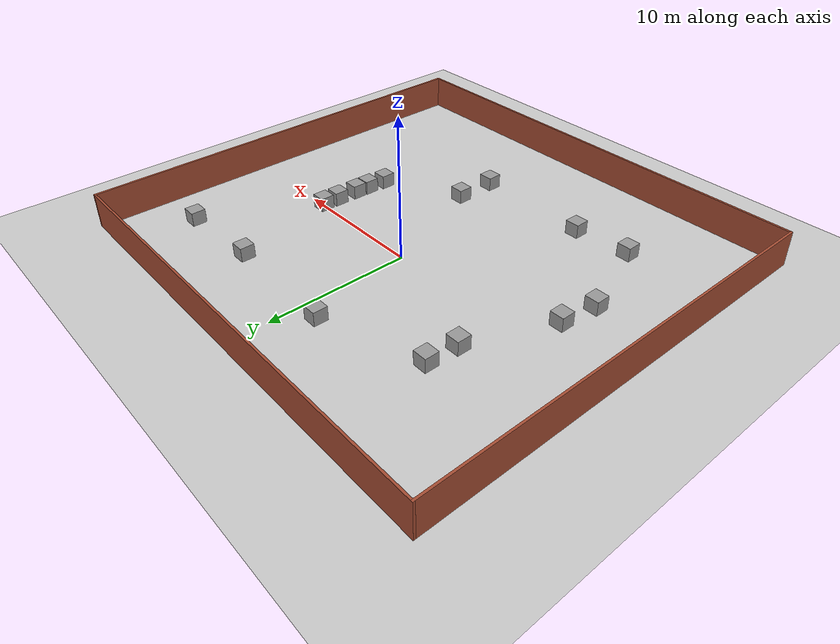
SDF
<sdf version="1.7">
 <world name="default">
  <light name="sun" type="directional">
   <pose>0 0 10 0 -0 0</pose>
   <diffuse>0.8 0.8 0.8 1</diffuse>
   <specular>0.2 0.2 0.2 1</specular>
   <attenuation>
    <range>1000</range>
    <constant>0.9</constant>
    <linear>0.01</linear>
    <quadratic>0.001</quadratic>
   </attenuation>
   <direction>-0.5 0.1 -0.9</direction>
   <spot><inner_angle>0</inner_angle><outer_angle>0</outer_angle><falloff>0</falloff></spot>
  </light>
  <model name="ground_plane">
   <static>1</static>
   <link name="link">
    <collision name="collision">
     <geometry><plane><normal>0 0 1</normal><size>100 100</size></plane></geometry>
     <surface><friction><ode><mu>100</mu><mu2>50</mu2></ode></friction></surface>
    </collision>
    <visual name="visual">
     <cast_shadows>0</cast_shadows>
     <geometry><plane><normal>0 0 1</normal><size>100 100</size></plane></geometry>
     <material>
      <script><uri>file://media/materials/scripts/gazebo.material</uri><name>Gazebo/Grey</name></script>
     </material>
    </visual>
   </link>
  </model>
  <gravity>0 0 -9.8</gravity>
  <magnetic_field>6e-06 2.3e-05 -4.2e-05</magnetic_field>
  <atmosphere type="adiabatic"/>
  <physics type="ode">
   <max_step_size>0.001</max_step_size>
   <real_time_factor>1</real_time_factor>
   <real_time_update_rate>1000</real_time_update_rate>
  </physics>
  <scene><ambient>0.4 0.4 0.4 1</ambient><background>0.7 0.7 0.7 1</background><shadows>1</shadows></scene>
  <audio><device>default</device></audio>
  <spherical_coordinates>
   <surface_model>EARTH_WGS84</surface_model>
   <latitude_deg>0</latitude_deg>
   <longitude_deg>0</longitude_deg>
   <elevation>0</elevation>
   <heading_deg>0</heading_deg>
  </spherical_coordinates>
  <model name="Untitled">
   <pose>-0.039058 -2.41938 0 0 -0 0</pose>
   <link name="Wall_11">
    <collision name="Wall_11_Collision">
     <geometry><box><size>31 0.15 2.5</size></box></geometry>
     <pose>0 0 1.25 0 -0 0</pose>
    </collision>
    <visual name="Wall_11_Visual">
     <pose>0 0 1.25 0 -0 0</pose>
     <geometry><box><size>31 0.15 2.5</size></box></geometry>
     <material>
      <script><uri>file://media/materials/scripts/gazebo.material</uri><name>Gazebo/Bricks</name></script>
      <ambient>1 1 1 1</ambient>
     </material>
     <meta><layer>0</layer></meta>
    </visual>
    <pose>-16.55 -0 0 0 -0 -1.5708</pose>
   </link>
   <link name="Wall_12">
    <collision name="Wall_12_Collision">
     <geometry><box><size>33.25 0.15 2.5</size></box></geometry>
     <pose>0 0 1.25 0 -0 0</pose>
    </collision>
    <visual name="Wall_12_Visual">
     <pose>0 0 1.25 0 -0 0</pose>
     <geometry><box><size>33.25 0.15 2.5</size></box></geometry>
     <material>
      <script><uri>file://media/materials/scripts/gazebo.material</uri><name>Gazebo/Bricks</name></script>
      <ambient>1 1 1 1</ambient>
     </material>
     <meta><layer>0</layer></meta>
    </visual>
    <pose>0 -15.425 0 0 -0 0</pose>
   </link>
   <link name="Wall_13">
    <collision name="Wall_13_Collision">
     <geometry><box><size>31 0.15 2.5</size></box></geometry>
     <pose>0 0 1.25 0 -0 0</pose>
    </collision>
    <visual name="Wall_13_Visual">
     <pose>0 0 1.25 0 -0 0</pose>
     <geometry><box><size>31 0.15 2.5</size></box></geometry>
     <material>
      <script><uri>file://media/materials/scripts/gazebo.material</uri><name>Gazebo/Bricks</name></script>
      <ambient>1 1 1 1</ambient>
     </material>
     <meta><layer>0</layer></meta>
    </visual>
    <pose>16.55 -0 0 0 -0 1.5708</pose>
   </link>
   <link name="Wall_14">
    <collision name="Wall_14_Collision">
     <geometry><box><size>33.25 0.15 2.5</size></box></geometry>
     <pose>0 0 1.25 0 -0 0</pose>
    </collision>
    <visual name="Wall_14_Visual">
     <pose>0 0 1.25 0 -0 0</pose>
     <geometry><box><size>33.25 0.15 2.5</size></box></geometry>
     <material>
      <script><uri>file://media/materials/scripts/gazebo.material</uri><name>Gazebo/Bricks</name></script>
      <ambient>1 1 1 1</ambient>
     </material>
     <meta><layer>0</layer></meta>
    </visual>
    <pose>0 15.425 0 0 -0 3.14159</pose>
   </link>
   <static>1</static>
  </model>
  <model name="unit_box">
   <pose>-9.43213 -11.178 0.5 0 -0 0</pose>
   <link name="link">
    <inertial>
     <mass>1</mass>
     <inertia>
      <ixx>0.166667</ixx>
      <ixy>0</ixy>
      <ixz>0</ixz>
      <iyy>0.166667</iyy>
      <iyz>0</iyz>
      <izz>0.166667</izz>
     </inertia>
    </inertial>
    <collision name="collision"><geometry><box><size>1 1 1</size></box></geometry></collision>
    <visual name="visual">
     <geometry><box><size>1 1 1</size></box></geometry>
     <material>
      <script><name>Gazebo/Grey</name><uri>file://media/materials/scripts/gazebo.material</uri></script>
     </material>
    </visual>
   </link>
  </model>
  <model name="unit_box_0">
   <pose>-5.44391 -10.7888 0.5 0 -0 0</pose>
   <link name="link">
    <inertial>
     <mass>1</mass>
     <inertia>
      <ixx>0.166667</ixx>
      <ixy>0</ixy>
      <ixz>0</ixz>
      <iyy>0.166667</iyy>
      <iyz>0</iyz>
      <izz>0.166667</izz>
     </inertia>
    </inertial>
    <collision name="collision"><geometry><box><size>1 1 1</size></box></geometry></collision>
    <visual name="visual">
     <geometry><box><size>1 1 1</size></box></geometry>
     <material>
      <script><name>Gazebo/Grey</name><uri>file://media/materials/scripts/gazebo.material</uri></script>
     </material>
    </visual>
   </link>
  </model>
  <model name="unit_box_1">
   <pose>-11.6268 -5.27934 0.5 0 -0 0</pose>
   <link name="link">
    <inertial>
     <mass>1</mass>
     <inertia>
      <ixx>0.166667</ixx>
      <ixy>0</ixy>
      <ixz>0</ixz>
      <iyy>0.166667</iyy>
      <iyz>0</iyz>
      <izz>0.166667</izz>
     </inertia>
    </inertial>
    <collision name="collision"><geometry><box><size>1 1 1</size></box></geometry></collision>
    <visual name="visual">
     <geometry><box><size>1 1 1</size></box></geometry>
     <material>
      <script><name>Gazebo/Grey</name><uri>file://media/materials/scripts/gazebo.material</uri></script>
     </material>
    </visual>
   </link>
  </model>
  <model name="unit_box_2">
   <pose>-8.83479 3.20127 0.5 0 -0 0</pose>
   <link name="link">
    <inertial>
     <mass>1</mass>
     <inertia>
      <ixx>0.166667</ixx>
      <ixy>0</ixy>
      <ixz>0</ixz>
      <iyy>0.166667</iyy>
      <iyz>0</iyz>
      <izz>0.166667</izz>
     </inertia>
    </inertial>
    <collision name="collision"><geometry><box><size>1 1 1</size></box></geometry></collision>
    <visual name="visual">
     <geometry><box><size>1 1 1</size></box></geometry>
     <material>
      <script><name>Gazebo/Grey</name><uri>file://media/materials/scripts/gazebo.material</uri></script>
     </material>
    </visual>
   </link>
  </model>
  <model name="unit_box_3">
   <pose>6.87912 7.51722 0.5 0 -0 0</pose>
   <link name="link">
    <inertial>
     <mass>1</mass>
     <inertia>
      <ixx>0.166667</ixx>
      <ixy>0</ixy>
      <ixz>0</ixz>
      <iyy>0.166667</iyy>
      <iyz>0</iyz>
      <izz>0.166667</izz>
     </inertia>
    </inertial>
    <collision name="collision"><geometry><box><size>1 1 1</size></box></geometry></collision>
    <visual name="visual">
     <geometry><box><size>1 1 1</size></box></geometry>
     <material>
      <script><name>Gazebo/Grey</name><uri>file://media/materials/scripts/gazebo.material</uri></script>
     </material>
    </visual>
   </link>
  </model>
  <model name="unit_box_4">
   <pose>3.0137 -8.04814 0.5 0 -0 0</pose>
   <link name="link">
    <inertial>
     <mass>1</mass>
     <inertia>
      <ixx>0.166667</ixx>
      <ixy>0</ixy>
      <ixz>0</ixz>
      <iyy>0.166667</iyy>
      <iyz>0</iyz>
      <izz>0.166667</izz>
     </inertia>
    </inertial>
    <collision name="collision"><geometry><box><size>1 1 1</size></box></geometry></collision>
    <visual name="visual">
     <geometry><box><size>1 1 1</size></box></geometry>
     <material>
      <script><name>Gazebo/Grey</name><uri>file://media/materials/scripts/gazebo.material</uri></script>
     </material>
    </visual>
   </link>
  </model>
  <model name="unit_box_5">
   <pose>8.55545 -1.14035 0.5 0 -0 0</pose>
   <link name="link">
    <inertial>
     <mass>1</mass>
     <inertia>
      <ixx>0.166667</ixx>
      <ixy>0</ixy>
      <ixz>0</ixz>
      <iyy>0.166667</iyy>
      <iyz>0</iyz>
      <izz>0.166667</izz>
     </inertia>
    </inertial>
    <collision name="collision"><geometry><box><size>1 1 1</size></box></geometry></collision>
    <visual name="visual">
     <geometry><box><size>1 1 1</size></box></geometry>
     <material>
      <script><name>Gazebo/Grey</name><uri>file://media/materials/scripts/gazebo.material</uri></script>
     </material>
    </visual>
   </link>
  </model>
  <model name="unit_box_6">
   <pose>-1.54313 7.69859 0.5 0 -0 0</pose>
   <link name="link">
    <inertial>
     <mass>1</mass>
     <inertia>
      <ixx>0.166667</ixx>
      <ixy>0</ixy>
      <ixz>0</ixz>
      <iyy>0.166667</iyy>
      <iyz>0</iyz>
      <izz>0.166667</izz>
     </inertia>
    </inertial>
    <collision name="collision"><geometry><box><size>1 1 1</size></box></geometry></collision>
    <visual name="visual">
     <geometry><box><size>1 1 1</size></box></geometry>
     <material>
      <script><name>Gazebo/Grey</name><uri>file://media/materials/scripts/gazebo.material</uri></script>
     </material>
    </visual>
   </link>
  </model>
  <model name="unit_box_7">
   <pose>12.8305 7.83272 0.5 0 -0 0</pose>
   <link name="link">
    <inertial>
     <mass>1</mass>
     <inertia>
      <ixx>0.166667</ixx>
      <ixy>0</ixy>
      <ixz>0</ixz>
      <iyy>0.166667</iyy>
      <iyz>0</iyz>
      <izz>0.166667</izz>
     </inertia>
    </inertial>
    <collision name="collision"><geometry><box><size>1 1 1</size></box></geometry></collision>
    <visual name="visual">
     <geometry><box><size>1 1 1</size></box></geometry>
     <material>
      <script><name>Gazebo/Grey</name><uri>file://media/materials/scripts/gazebo.material</uri></script>
     </material>
    </visual>
   </link>
  </model>
  <model name="unit_box_8">
   <pose>2.94751 -10.9046 0.5 0 -0 0</pose>
   <link name="link">
    <inertial>
     <mass>1</mass>
     <inertia>
      <ixx>0.166667</ixx>
      <ixy>0</ixy>
      <ixz>0</ixz>
      <iyy>0.166667</iyy>
      <iyz>0</iyz>
      <izz>0.166667</izz>
     </inertia>
    </inertial>
    <collision name="collision"><geometry><box><size>1 1 1</size></box></geometry></collision>
    <visual name="visual">
     <geometry><box><size>1 1 1</size></box></geometry>
     <material>
      <script><name>Gazebo/Grey</name><uri>file://media/materials/scripts/gazebo.material</uri></script>
     </material>
    </visual>
   </link>
  </model>
  <model name="unit_box_9">
   <pose>-8.69195 5.43701 0.5 0 -0 0</pose>
   <link name="link">
    <inertial>
     <mass>1</mass>
     <inertia>
      <ixx>0.166667</ixx>
      <ixy>0</ixy>
      <ixz>0</ixz>
      <iyy>0.166667</iyy>
      <iyz>0</iyz>
      <izz>0.166667</izz>
     </inertia>
    </inertial>
    <collision name="collision"><geometry><box><size>1 1 1</size></box></geometry></collision>
    <visual name="visual">
     <geometry><box><size>1 1 1</size></box></geometry>
     <material>
      <script><name>Gazebo/Grey</name><uri>file://media/materials/scripts/gazebo.material</uri></script>
     </material>
    </visual>
   </link>
  </model>
  <model name="unit_box_10">
   <pose>-11.2576 -2.63963 0.5 0 -0 0</pose>
   <link name="link">
    <inertial>
     <mass>1</mass>
     <inertia>
      <ixx>0.166667</ixx>
      <ixy>0</ixy>
      <ixz>0</ixz>
      <iyy>0.166667</iyy>
      <iyz>0</iyz>
      <izz>0.166667</izz>
     </inertia>
    </inertial>
    <collision name="collision"><geometry><box><size>1 1 1</size></box></geometry></collision>
    <visual name="visual">
     <geometry><box><size>1 1 1</size></box></geometry>
     <material>
      <script><name>Gazebo/Grey</name><uri>file://media/materials/scripts/gazebo.material</uri></script>
     </material>
    </visual>
   </link>
  </model>
  <model name="unit_box_11">
   <pose>8.49325 -2.70008 0.5 0 -0 0</pose>
   <link name="link">
    <inertial>
     <mass>1</mass>
     <inertia>
      <ixx>0.166667</ixx>
      <ixy>0</ixy>
      <ixz>0</ixz>
      <iyy>0.166667</iyy>
      <iyz>0</iyz>
      <izz>0.166667</izz>
     </inertia>
    </inertial>
    <collision name="collision"><geometry><box><size>1 1 1</size></box></geometry></collision>
    <visual name="visual">
     <geometry><box><size>1 1 1</size></box></geometry>
     <material>
      <script><name>Gazebo/Grey</name><uri>file://media/materials/scripts/gazebo.material</uri></script>
     </material>
    </visual>
   </link>
  </model>
  <model name="unit_box_12">
   <pose>8.45512 -3.76801 0.5 0 -0 0</pose>
   <link name="link">
    <inertial>
     <mass>1</mass>
     <inertia>
      <ixx>0.166667</ixx>
      <ixy>0</ixy>
      <ixz>0</ixz>
      <iyy>0.166667</iyy>
      <iyz>0</iyz>
      <izz>0.166667</izz>
     </inertia>
    </inertial>
    <collision name="collision"><geometry><box><size>1 1 1</size></box></geometry></collision>
    <visual name="visual">
     <geometry><box><size>1 1 1</size></box></geometry>
     <material>
      <script><name>Gazebo/Grey</name><uri>file://media/materials/scripts/gazebo.material</uri></script>
     </material>
    </visual>
   </link>
  </model>
  <model name="unit_box_13">
   <pose>8.59584 0.06789 0.5 0 -0 0</pose>
   <link name="link">
    <inertial>
     <mass>1</mass>
     <inertia>
      <ixx>0.166667</ixx>
      <ixy>0</ixy>
      <ixz>0</ixz>
      <iyy>0.166667</iyy>
      <iyz>0</iyz>
      <izz>0.166667</izz>
     </inertia>
    </inertial>
    <collision name="collision"><geometry><box><size>1 1 1</size></box></geometry></collision>
    <visual name="visual">
     <geometry><box><size>1 1 1</size></box></geometry>
     <material>
      <script><name>Gazebo/Grey</name><uri>file://media/materials/scripts/gazebo.material</uri></script>
     </material>
    </visual>
   </link>
  </model>
  <model name="unit_box_14">
   <pose>8.31912 -5.18312 0.5 0 -0 0</pose>
   <link name="link">
    <inertial>
     <mass>1</mass>
     <inertia>
      <ixx>0.166667</ixx>
      <ixy>0</ixy>
      <ixz>0</ixz>
      <iyy>0.166667</iyy>
      <iyz>0</iyz>
      <izz>0.166667</izz>
     </inertia>
    </inertial>
    <collision name="collision"><geometry><box><size>1 1 1</size></box></geometry></collision>
    <visual name="visual">
     <geometry><box><size>1 1 1</size></box></geometry>
     <material>
      <script><name>Gazebo/Grey</name><uri>file://media/materials/scripts/gazebo.material</uri></script>
     </material>
    </visual>
   </link>
  </model>
 </world>
</sdf>
